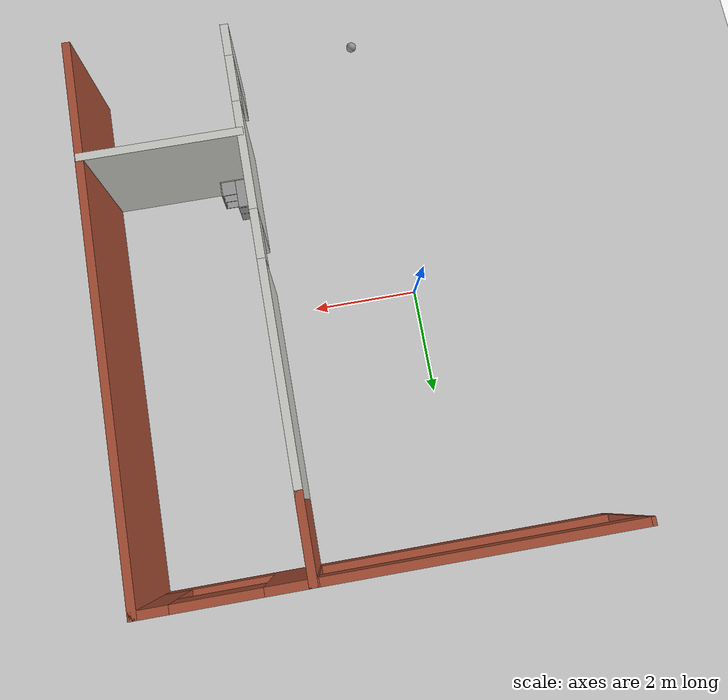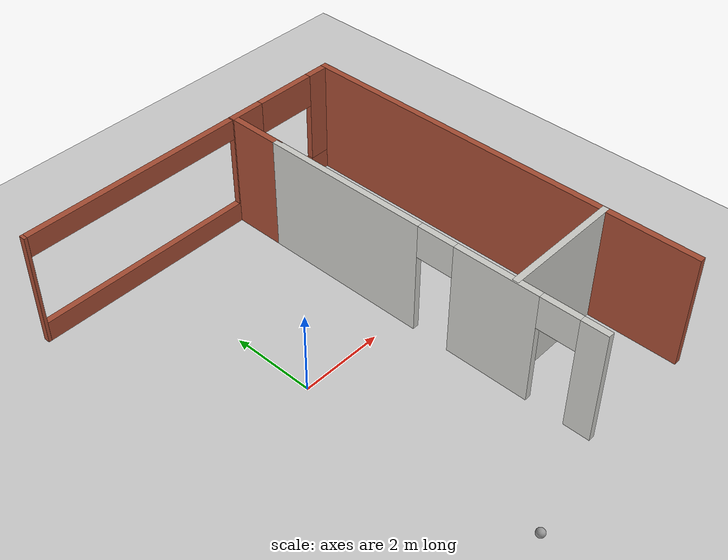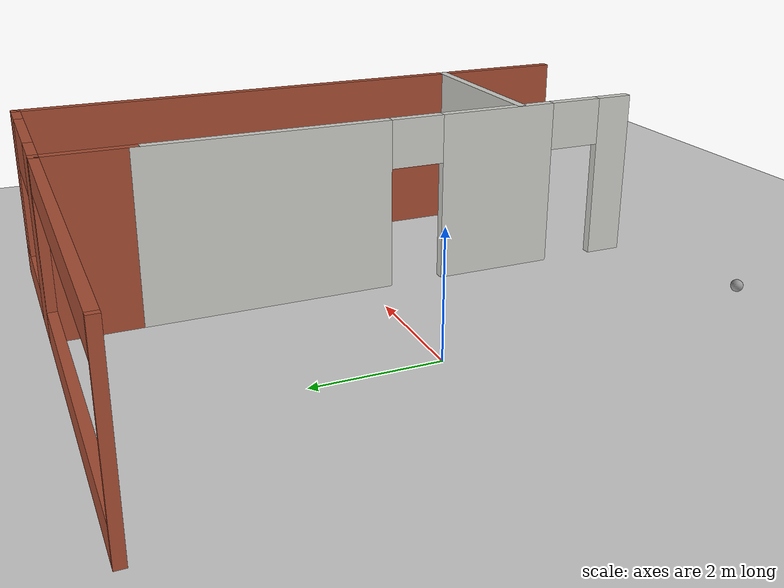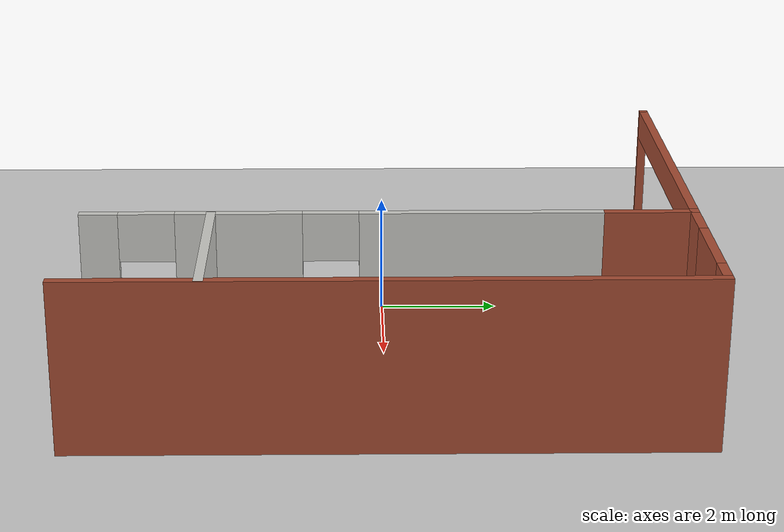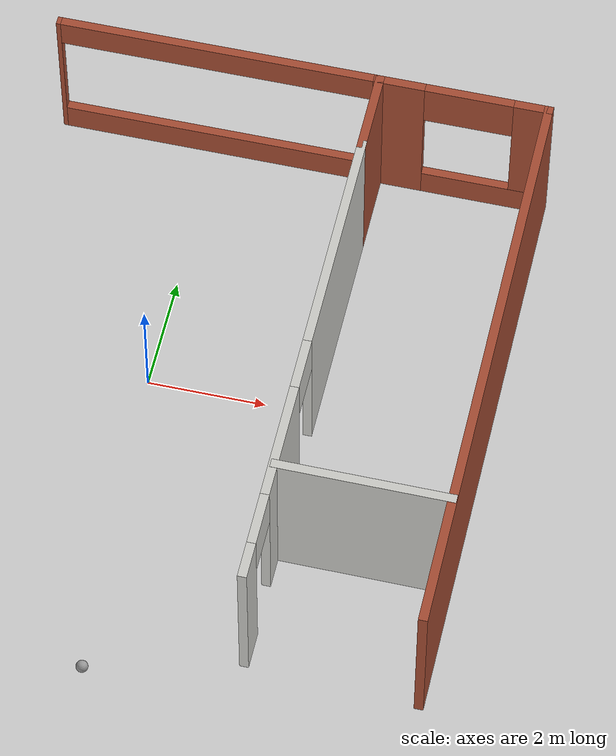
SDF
<sdf version="1.6">
 <world name="default">
  <model name="ground_plane">
   <static>1</static>
   <link name="link">
    <collision name="collision">
     <geometry><plane><normal>0 0 1</normal><size>100 100</size></plane></geometry>
     <surface>
      <contact><collide_bitmask>65535</collide_bitmask></contact>
      <friction><ode><mu>100</mu><mu2>50</mu2></ode></friction>
     </surface>
    </collision>
    <visual name="visual">
     <cast_shadows>0</cast_shadows>
     <geometry><plane><normal>0 0 1</normal><size>100 100</size></plane></geometry>
     <material>
      <script><uri>file://media/materials/scripts/gazebo.material</uri><name>Gazebo/Grey</name></script>
     </material>
    </visual>
   </link>
  </model>
  <model name="my_ball">
   <link name="link_0">
    <inertial>
     <mass>1</mass>
     <inertia><ixx>0.1</ixx><ixy>0</ixy><ixz>0</ixz><iyy>0.1</iyy><iyz>0</iyz><izz>0.1</izz></inertia>
    </inertial>
    <visual name="visual">
     <geometry><sphere><radius>0.1</radius></sphere></geometry>
     <material>
      <lighting>1</lighting>
      <script><uri>file://media/materials/scripts/gazebo.material</uri><name>Gazebo/Grey</name></script>
      <shader type="pixel"><normal_map>__default__</normal_map></shader>
      <ambient>1 1 1 1</ambient>
      <diffuse>1 1 1 1</diffuse>
      <specular>1 1 1 1</specular>
      <emissive>1 1 1 1</emissive>
     </material>
    </visual>
    <collision name="collision">
     <geometry><sphere><radius>0.1</radius></sphere></geometry>
     <surface>
      <friction>
       <ode><mu>1</mu><mu2>1</mu2><fdir1>0 0 0</fdir1><slip1>0</slip1><slip2>0</slip2></ode>
       <torsional>
        <coefficient>1</coefficient>
        <patch_radius>0</patch_radius>
        <surface_radius>0</surface_radius>
        <use_patch_radius>1</use_patch_radius>
        <ode><slip>0</slip></ode>
       </torsional>
      </friction>
      <bounce><restitution_coefficient>0</restitution_coefficient><threshold>1e+06</threshold></bounce>
      <contact>
       <collide_without_contact>0</collide_without_contact>
       <collide_without_contact_bitmask>1</collide_without_contact_bitmask>
       <collide_bitmask>1</collide_bitmask>
       <ode>
        <soft_cfm>0</soft_cfm>
        <soft_erp>0.2</soft_erp>
        <kp>1e+13</kp>
        <kd>1</kd>
        <max_vel>0.01</max_vel>
        <min_depth>0</min_depth>
       </ode>
       <bullet>
        <split_impulse>1</split_impulse>
        <split_impulse_penetration_threshold>-0.01</split_impulse_penetration_threshold>
        <soft_cfm>0</soft_cfm>
        <soft_erp>0.2</soft_erp>
        <kp>1e+13</kp>
        <kd>1</kd>
       </bullet>
      </contact>
     </surface>
    </collision>
   </link>
   <static>0</static>
   <pose>0.318591 -5.49363 0.1 0 -0 0</pose>
  </model>
  <model name="house">
   <link name="Wall_3">
    <pose>0.074445 4.925 0 0 -0 0</pose>
    <visual name="Wall_3_Visual_0">
     <pose>-2.76234 0 1.4 0 -0 0</pose>
     <geometry><box><size>0.07533 0.15 2.8</size></box></geometry>
     <material>
      <script><uri>file://media/materials/scripts/gazebo.material</uri><name>Gazebo/Bricks</name></script>
      <ambient>1 1 1 1</ambient>
      <shader type="pixel"/>
      <diffuse>1 1 1 1</diffuse>
      <specular>0.2 0.2 0.2 1</specular>
      <emissive>0 0 0 1</emissive>
     </material>
     <meta><layer>0</layer></meta>
    </visual>
    <visual name="Wall_3_Visual_2">
     <pose>2.71166 0 1.65 0 -0 0</pose>
     <geometry><box><size>0.17667 0.15 2.3</size></box></geometry>
     <material>
      <script><uri>file://media/materials/scripts/gazebo.material</uri><name>Gazebo/Bricks</name></script>
      <ambient>1 1 1 1</ambient>
      <shader type="pixel"/>
      <diffuse>1 1 1 1</diffuse>
      <specular>0.2 0.2 0.2 1</specular>
      <emissive>0 0 0 1</emissive>
     </material>
     <meta><layer>0</layer></meta>
    </visual>
    <visual name="Wall_3_Visual_1">
     <pose>0.037665 0 0.25 0 -0 0</pose>
     <geometry><box><size>5.52467 0.15 0.5</size></box></geometry>
     <material>
      <script><uri>file://media/materials/scripts/gazebo.material</uri><name>Gazebo/Bricks</name></script>
      <ambient>1 1 1 1</ambient>
      <shader type="pixel"/>
      <diffuse>1 1 1 1</diffuse>
      <specular>0.2 0.2 0.2 1</specular>
      <emissive>0 0 0 1</emissive>
     </material>
     <meta><layer>0</layer></meta>
    </visual>
    <visual name="Wall_3_Visual_3">
     <pose>-0.05067 0 2.55 0 -0 0</pose>
     <geometry><box><size>5.348 0.15 0.5</size></box></geometry>
     <material>
      <script><uri>file://media/materials/scripts/gazebo.material</uri><name>Gazebo/Bricks</name></script>
      <ambient>1 1 1 1</ambient>
      <shader type="pixel"/>
      <diffuse>1 1 1 1</diffuse>
      <specular>0.2 0.2 0.2 1</specular>
      <emissive>0 0 0 1</emissive>
     </material>
     <meta><layer>0</layer></meta>
    </visual>
    <collision name="Wall_3_Collision_0">
     <pose>-2.76234 0 1.4 0 -0 0</pose>
     <geometry><box><size>0.07533 0.15 2.8</size></box></geometry>
     <surface>
      <friction>
       <ode><mu>1</mu><mu2>1</mu2><fdir1>0 0 0</fdir1><slip1>0</slip1><slip2>0</slip2></ode>
       <torsional>
        <coefficient>1</coefficient>
        <patch_radius>0</patch_radius>
        <surface_radius>0</surface_radius>
        <use_patch_radius>1</use_patch_radius>
        <ode><slip>0</slip></ode>
       </torsional>
      </friction>
      <bounce><restitution_coefficient>0</restitution_coefficient><threshold>1e+06</threshold></bounce>
      <contact>
       <collide_without_contact>0</collide_without_contact>
       <collide_without_contact_bitmask>1</collide_without_contact_bitmask>
       <collide_bitmask>1</collide_bitmask>
       <ode>
        <soft_cfm>0</soft_cfm>
        <soft_erp>0.2</soft_erp>
        <kp>1e+13</kp>
        <kd>1</kd>
        <max_vel>0.01</max_vel>
        <min_depth>0</min_depth>
       </ode>
       <bullet>
        <split_impulse>1</split_impulse>
        <split_impulse_penetration_threshold>-0.01</split_impulse_penetration_threshold>
        <soft_cfm>0</soft_cfm>
        <soft_erp>0.2</soft_erp>
        <kp>1e+13</kp>
        <kd>1</kd>
       </bullet>
      </contact>
     </surface>
    </collision>
    <collision name="Wall_3_Collision_1">
     <pose>0.037665 0 0.25 0 -0 0</pose>
     <geometry><box><size>5.52467 0.15 0.5</size></box></geometry>
     <surface>
      <friction>
       <ode><mu>1</mu><mu2>1</mu2><fdir1>0 0 0</fdir1><slip1>0</slip1><slip2>0</slip2></ode>
       <torsional>
        <coefficient>1</coefficient>
        <patch_radius>0</patch_radius>
        <surface_radius>0</surface_radius>
        <use_patch_radius>1</use_patch_radius>
        <ode><slip>0</slip></ode>
       </torsional>
      </friction>
      <bounce><restitution_coefficient>0</restitution_coefficient><threshold>1e+06</threshold></bounce>
      <contact>
       <collide_without_contact>0</collide_without_contact>
       <collide_without_contact_bitmask>1</collide_without_contact_bitmask>
       <collide_bitmask>1</collide_bitmask>
       <ode>
        <soft_cfm>0</soft_cfm>
        <soft_erp>0.2</soft_erp>
        <kp>1e+13</kp>
        <kd>1</kd>
        <max_vel>0.01</max_vel>
        <min_depth>0</min_depth>
       </ode>
       <bullet>
        <split_impulse>1</split_impulse>
        <split_impulse_penetration_threshold>-0.01</split_impulse_penetration_threshold>
        <soft_cfm>0</soft_cfm>
        <soft_erp>0.2</soft_erp>
        <kp>1e+13</kp>
        <kd>1</kd>
       </bullet>
      </contact>
     </surface>
    </collision>
    <collision name="Wall_3_Collision_2">
     <pose>2.71166 0 1.65 0 -0 0</pose>
     <geometry><box><size>0.17667 0.15 2.3</size></box></geometry>
     <surface>
      <friction>
       <ode><mu>1</mu><mu2>1</mu2><fdir1>0 0 0</fdir1><slip1>0</slip1><slip2>0</slip2></ode>
       <torsional>
        <coefficient>1</coefficient>
        <patch_radius>0</patch_radius>
        <surface_radius>0</surface_radius>
        <use_patch_radius>1</use_patch_radius>
        <ode><slip>0</slip></ode>
       </torsional>
      </friction>
      <bounce><restitution_coefficient>0</restitution_coefficient><threshold>1e+06</threshold></bounce>
      <contact>
       <collide_without_contact>0</collide_without_contact>
       <collide_without_contact_bitmask>1</collide_without_contact_bitmask>
       <collide_bitmask>1</collide_bitmask>
       <ode>
        <soft_cfm>0</soft_cfm>
        <soft_erp>0.2</soft_erp>
        <kp>1e+13</kp>
        <kd>1</kd>
        <max_vel>0.01</max_vel>
        <min_depth>0</min_depth>
       </ode>
       <bullet>
        <split_impulse>1</split_impulse>
        <split_impulse_penetration_threshold>-0.01</split_impulse_penetration_threshold>
        <soft_cfm>0</soft_cfm>
        <soft_erp>0.2</soft_erp>
        <kp>1e+13</kp>
        <kd>1</kd>
       </bullet>
      </contact>
     </surface>
    </collision>
    <collision name="Wall_3_Collision_3">
     <pose>-0.05067 0 2.55 0 -0 0</pose>
     <geometry><box><size>5.348 0.15 0.5</size></box></geometry>
     <surface>
      <friction>
       <ode><mu>1</mu><mu2>1</mu2><fdir1>0 0 0</fdir1><slip1>0</slip1><slip2>0</slip2></ode>
       <torsional>
        <coefficient>1</coefficient>
        <patch_radius>0</patch_radius>
        <surface_radius>0</surface_radius>
        <use_patch_radius>1</use_patch_radius>
        <ode><slip>0</slip></ode>
       </torsional>
      </friction>
      <bounce><restitution_coefficient>0</restitution_coefficient><threshold>1e+06</threshold></bounce>
      <contact>
       <collide_without_contact>0</collide_without_contact>
       <collide_without_contact_bitmask>1</collide_without_contact_bitmask>
       <collide_bitmask>1</collide_bitmask>
       <ode>
        <soft_cfm>0</soft_cfm>
        <soft_erp>0.2</soft_erp>
        <kp>1e+13</kp>
        <kd>1</kd>
        <max_vel>0.01</max_vel>
        <min_depth>0</min_depth>
       </ode>
       <bullet>
        <split_impulse>1</split_impulse>
        <split_impulse_penetration_threshold>-0.01</split_impulse_penetration_threshold>
        <soft_cfm>0</soft_cfm>
        <soft_erp>0.2</soft_erp>
        <kp>1e+13</kp>
        <kd>1</kd>
       </bullet>
      </contact>
     </surface>
    </collision>
   </link>
   <link name="Wall_36">
    <pose>2.79944 4.2395 0 0 0 -1.5708</pose>
    <visual name="Wall_36_Visual">
     <pose>0 0 1.4 0 -0 0</pose>
     <geometry><box><size>1.521 0.15 2.8</size></box></geometry>
     <material>
      <script><uri>file://media/materials/scripts/gazebo.material</uri><name>Gazebo/Bricks</name></script>
      <ambient>1 1 1 1</ambient>
      <shader type="pixel"/>
      <diffuse>1 1 1 1</diffuse>
      <specular>0.2 0.2 0.2 1</specular>
      <emissive>0 0 0 1</emissive>
     </material>
     <meta><layer>0</layer></meta>
    </visual>
    <collision name="Wall_36_Collision">
     <pose>0 0 1.4 0 -0 0</pose>
     <geometry><box><size>1.521 0.15 2.8</size></box></geometry>
     <surface>
      <friction>
       <ode><mu>1</mu><mu2>1</mu2><fdir1>0 0 0</fdir1><slip1>0</slip1><slip2>0</slip2></ode>
       <torsional>
        <coefficient>1</coefficient>
        <patch_radius>0</patch_radius>
        <surface_radius>0</surface_radius>
        <use_patch_radius>1</use_patch_radius>
        <ode><slip>0</slip></ode>
       </torsional>
      </friction>
      <bounce><restitution_coefficient>0</restitution_coefficient><threshold>1e+06</threshold></bounce>
      <contact>
       <collide_without_contact>0</collide_without_contact>
       <collide_without_contact_bitmask>1</collide_without_contact_bitmask>
       <collide_bitmask>1</collide_bitmask>
       <ode>
        <soft_cfm>0</soft_cfm>
        <soft_erp>0.2</soft_erp>
        <kp>1e+13</kp>
        <kd>1</kd>
        <max_vel>0.01</max_vel>
        <min_depth>0</min_depth>
       </ode>
       <bullet>
        <split_impulse>1</split_impulse>
        <split_impulse_penetration_threshold>-0.01</split_impulse_penetration_threshold>
        <soft_cfm>0</soft_cfm>
        <soft_erp>0.2</soft_erp>
        <kp>1e+13</kp>
        <kd>1</kd>
       </bullet>
      </contact>
     </surface>
    </collision>
   </link>
   <link name="Wall_4">
    <pose>4.22444 4.925 0 0 -0 0</pose>
    <visual name="Wall_4_Visual_0">
     <pose>-1.07575 0 1.4 0 -0 0</pose>
     <geometry><box><size>0.848504 0.15 2.8</size></box></geometry>
     <material>
      <script><uri>file://media/materials/scripts/gazebo.material</uri><name>Gazebo/Bricks</name></script>
      <ambient>1 1 1 1</ambient>
      <shader type="pixel"/>
      <diffuse>1 1 1 1</diffuse>
      <specular>0.2 0.2 0.2 1</specular>
      <emissive>0 0 0 1</emissive>
     </material>
     <meta><layer>0</layer></meta>
    </visual>
    <visual name="Wall_4_Visual_1">
     <pose>0.424252 0 0.25 0 -0 0</pose>
     <geometry><box><size>2.1515 0.15 0.5</size></box></geometry>
     <material>
      <script><uri>file://media/materials/scripts/gazebo.material</uri><name>Gazebo/Bricks</name></script>
      <ambient>1 1 1 1</ambient>
      <shader type="pixel"/>
      <diffuse>1 1 1 1</diffuse>
      <specular>0.2 0.2 0.2 1</specular>
      <emissive>0 0 0 1</emissive>
     </material>
     <meta><layer>0</layer></meta>
    </visual>
    <visual name="Wall_4_Visual_2">
     <pose>1.17425 0 1.65 0 -0 0</pose>
     <geometry><box><size>0.651496 0.15 2.3</size></box></geometry>
     <material>
      <script><uri>file://media/materials/scripts/gazebo.material</uri><name>Gazebo/Bricks</name></script>
      <ambient>1 1 1 1</ambient>
      <shader type="pixel"/>
      <diffuse>1 1 1 1</diffuse>
      <specular>0.2 0.2 0.2 1</specular>
      <emissive>0 0 0 1</emissive>
     </material>
     <meta><layer>0</layer></meta>
    </visual>
    <visual name="Wall_4_Visual_3">
     <pose>0.098504 0 2.4 0 -0 0</pose>
     <geometry><box><size>1.5 0.15 0.8</size></box></geometry>
     <material>
      <script><uri>file://media/materials/scripts/gazebo.material</uri><name>Gazebo/Bricks</name></script>
      <ambient>1 1 1 1</ambient>
      <shader type="pixel"/>
      <diffuse>1 1 1 1</diffuse>
      <specular>0.2 0.2 0.2 1</specular>
      <emissive>0 0 0 1</emissive>
     </material>
     <meta><layer>0</layer></meta>
    </visual>
    <collision name="Wall_4_Collision_0">
     <pose>-1.07575 0 1.4 0 -0 0</pose>
     <geometry><box><size>0.848504 0.15 2.8</size></box></geometry>
     <surface>
      <friction>
       <ode><mu>1</mu><mu2>1</mu2><fdir1>0 0 0</fdir1><slip1>0</slip1><slip2>0</slip2></ode>
       <torsional>
        <coefficient>1</coefficient>
        <patch_radius>0</patch_radius>
        <surface_radius>0</surface_radius>
        <use_patch_radius>1</use_patch_radius>
        <ode><slip>0</slip></ode>
       </torsional>
      </friction>
      <bounce><restitution_coefficient>0</restitution_coefficient><threshold>1e+06</threshold></bounce>
      <contact>
       <collide_without_contact>0</collide_without_contact>
       <collide_without_contact_bitmask>1</collide_without_contact_bitmask>
       <collide_bitmask>1</collide_bitmask>
       <ode>
        <soft_cfm>0</soft_cfm>
        <soft_erp>0.2</soft_erp>
        <kp>1e+13</kp>
        <kd>1</kd>
        <max_vel>0.01</max_vel>
        <min_depth>0</min_depth>
       </ode>
       <bullet>
        <split_impulse>1</split_impulse>
        <split_impulse_penetration_threshold>-0.01</split_impulse_penetration_threshold>
        <soft_cfm>0</soft_cfm>
        <soft_erp>0.2</soft_erp>
        <kp>1e+13</kp>
        <kd>1</kd>
       </bullet>
      </contact>
     </surface>
    </collision>
    <collision name="Wall_4_Collision_1">
     <pose>0.424252 0 0.25 0 -0 0</pose>
     <geometry><box><size>2.1515 0.15 0.5</size></box></geometry>
     <surface>
      <friction>
       <ode><mu>1</mu><mu2>1</mu2><fdir1>0 0 0</fdir1><slip1>0</slip1><slip2>0</slip2></ode>
       <torsional>
        <coefficient>1</coefficient>
        <patch_radius>0</patch_radius>
        <surface_radius>0</surface_radius>
        <use_patch_radius>1</use_patch_radius>
        <ode><slip>0</slip></ode>
       </torsional>
      </friction>
      <bounce><restitution_coefficient>0</restitution_coefficient><threshold>1e+06</threshold></bounce>
      <contact>
       <collide_without_contact>0</collide_without_contact>
       <collide_without_contact_bitmask>1</collide_without_contact_bitmask>
       <collide_bitmask>1</collide_bitmask>
       <ode>
        <soft_cfm>0</soft_cfm>
        <soft_erp>0.2</soft_erp>
        <kp>1e+13</kp>
        <kd>1</kd>
        <max_vel>0.01</max_vel>
        <min_depth>0</min_depth>
       </ode>
       <bullet>
        <split_impulse>1</split_impulse>
        <split_impulse_penetration_threshold>-0.01</split_impulse_penetration_threshold>
        <soft_cfm>0</soft_cfm>
        <soft_erp>0.2</soft_erp>
        <kp>1e+13</kp>
        <kd>1</kd>
       </bullet>
      </contact>
     </surface>
    </collision>
    <collision name="Wall_4_Collision_2">
     <pose>1.17425 0 1.65 0 -0 0</pose>
     <geometry><box><size>0.651496 0.15 2.3</size></box></geometry>
     <surface>
      <friction>
       <ode><mu>1</mu><mu2>1</mu2><fdir1>0 0 0</fdir1><slip1>0</slip1><slip2>0</slip2></ode>
       <torsional>
        <coefficient>1</coefficient>
        <patch_radius>0</patch_radius>
        <surface_radius>0</surface_radius>
        <use_patch_radius>1</use_patch_radius>
        <ode><slip>0</slip></ode>
       </torsional>
      </friction>
      <bounce><restitution_coefficient>0</restitution_coefficient><threshold>1e+06</threshold></bounce>
      <contact>
       <collide_without_contact>0</collide_without_contact>
       <collide_without_contact_bitmask>1</collide_without_contact_bitmask>
       <collide_bitmask>1</collide_bitmask>
       <ode>
        <soft_cfm>0</soft_cfm>
        <soft_erp>0.2</soft_erp>
        <kp>1e+13</kp>
        <kd>1</kd>
        <max_vel>0.01</max_vel>
        <min_depth>0</min_depth>
       </ode>
       <bullet>
        <split_impulse>1</split_impulse>
        <split_impulse_penetration_threshold>-0.01</split_impulse_penetration_threshold>
        <soft_cfm>0</soft_cfm>
        <soft_erp>0.2</soft_erp>
        <kp>1e+13</kp>
        <kd>1</kd>
       </bullet>
      </contact>
     </surface>
    </collision>
    <collision name="Wall_4_Collision_3">
     <pose>0.098504 0 2.4 0 -0 0</pose>
     <geometry><box><size>1.5 0.15 0.8</size></box></geometry>
     <surface>
      <friction>
       <ode><mu>1</mu><mu2>1</mu2><fdir1>0 0 0</fdir1><slip1>0</slip1><slip2>0</slip2></ode>
       <torsional>
        <coefficient>1</coefficient>
        <patch_radius>0</patch_radius>
        <surface_radius>0</surface_radius>
        <use_patch_radius>1</use_patch_radius>
        <ode><slip>0</slip></ode>
       </torsional>
      </friction>
      <bounce><restitution_coefficient>0</restitution_coefficient><threshold>1e+06</threshold></bounce>
      <contact>
       <collide_without_contact>0</collide_without_contact>
       <collide_without_contact_bitmask>1</collide_without_contact_bitmask>
       <collide_bitmask>1</collide_bitmask>
       <ode>
        <soft_cfm>0</soft_cfm>
        <soft_erp>0.2</soft_erp>
        <kp>1e+13</kp>
        <kd>1</kd>
        <max_vel>0.01</max_vel>
        <min_depth>0</min_depth>
       </ode>
       <bullet>
        <split_impulse>1</split_impulse>
        <split_impulse_penetration_threshold>-0.01</split_impulse_penetration_threshold>
        <soft_cfm>0</soft_cfm>
        <soft_erp>0.2</soft_erp>
        <kp>1e+13</kp>
        <kd>1</kd>
       </bullet>
      </contact>
     </surface>
    </collision>
   </link>
   <link name="Wall_41">
    <pose>2.79944 -0.621 0 0 -0 1.5708</pose>
    <inertial>
     <mass>1</mass>
     <inertia><ixx>1</ixx><ixy>0</ixy><ixz>0</ixz><iyy>1</iyy><iyz>0</iyz><izz>1</izz></inertia>
    </inertial>
    <visual name="Wall_41_Visual_0">
     <pose>-3.9395 0 1.4 0 -0 0</pose>
     <geometry><box><size>0.621 0.15 2.8</size></box></geometry>
     <material>
      <script><uri>file://media/materials/scripts/gazebo.material</uri><name>Gazebo/CeilingTiled</name></script>
      <ambient>1 1 1 1</ambient>
      <shader type="pixel"><normal_map>__default__</normal_map></shader>
      <diffuse>1 1 1 1</diffuse>
      <specular>0 0 0 1</specular>
      <emissive>0 0 0 1</emissive>
     </material>
     <meta><layer>0</layer></meta>
    </visual>
    <visual name="Wall_41_Visual_1">
     <pose>-1.71426 0 1.4 0 -0 0</pose>
     <geometry><box><size>2.02948 0.15 2.8</size></box></geometry>
     <material>
      <script><uri>file://media/materials/scripts/gazebo.material</uri><name>Gazebo/CeilingTiled</name></script>
      <ambient>1 1 1 1</ambient>
      <shader type="pixel"><normal_map>__default__</normal_map></shader>
      <diffuse>1 1 1 1</diffuse>
      <specular>0 0 0 1</specular>
      <emissive>0 0 0 1</emissive>
     </material>
     <meta><layer>0</layer></meta>
    </visual>
    <visual name="Wall_41_Visual_2">
     <pose>2.22524 0 1.4 0 -0 0</pose>
     <geometry><box><size>4.04952 0.15 2.8</size></box></geometry>
     <material>
      <script><uri>file://media/materials/scripts/gazebo.material</uri><name>Gazebo/CeilingTiled</name></script>
      <ambient>1 1 1 1</ambient>
      <shader type="pixel"><normal_map>__default__</normal_map></shader>
      <diffuse>1 1 1 1</diffuse>
      <specular>0 0 0 1</specular>
      <emissive>0 0 0 1</emissive>
     </material>
     <meta><layer>0</layer></meta>
    </visual>
    <visual name="Wall_41_Visual_5">
     <pose>-3.179 0 2.4 0 -0 0</pose>
     <geometry><box><size>0.9 0.15 0.8</size></box></geometry>
     <material>
      <script><uri>file://media/materials/scripts/gazebo.material</uri><name>Gazebo/CeilingTiled</name></script>
      <ambient>1 1 1 1</ambient>
      <shader type="pixel"><normal_map>__default__</normal_map></shader>
      <diffuse>1 1 1 1</diffuse>
      <specular>0 0 0 1</specular>
      <emissive>0 0 0 1</emissive>
     </material>
     <meta><layer>0</layer></meta>
    </visual>
    <visual name="Wall_41_Visual_6">
     <pose>-0.249524 0 2.4 0 -0 0</pose>
     <geometry><box><size>0.9 0.15 0.8</size></box></geometry>
     <material>
      <script><uri>file://media/materials/scripts/gazebo.material</uri><name>Gazebo/CeilingTiled</name></script>
      <ambient>1 1 1 1</ambient>
      <shader type="pixel"><normal_map>__default__</normal_map></shader>
      <diffuse>1 1 1 1</diffuse>
      <specular>0 0 0 1</specular>
      <emissive>0 0 0 1</emissive>
     </material>
     <meta><layer>0</layer></meta>
    </visual>
    <collision name="Wall_41_Collision_5">
     <pose>-3.179 0 2.4 0 -0 0</pose>
     <geometry><box><size>0.9 0.15 0.8</size></box></geometry>
     <surface>
      <friction>
       <ode><mu>1</mu><mu2>1</mu2><fdir1>0 0 0</fdir1><slip1>0</slip1><slip2>0</slip2></ode>
       <torsional>
        <coefficient>1</coefficient>
        <patch_radius>0</patch_radius>
        <surface_radius>0</surface_radius>
        <use_patch_radius>1</use_patch_radius>
        <ode><slip>0</slip></ode>
       </torsional>
      </friction>
      <bounce><restitution_coefficient>0</restitution_coefficient><threshold>1e+06</threshold></bounce>
      <contact>
       <collide_without_contact>0</collide_without_contact>
       <collide_without_contact_bitmask>1</collide_without_contact_bitmask>
       <collide_bitmask>1</collide_bitmask>
       <ode>
        <soft_cfm>0</soft_cfm>
        <soft_erp>0.2</soft_erp>
        <kp>1e+13</kp>
        <kd>1</kd>
        <max_vel>0.01</max_vel>
        <min_depth>0</min_depth>
       </ode>
       <bullet>
        <split_impulse>1</split_impulse>
        <split_impulse_penetration_threshold>-0.01</split_impulse_penetration_threshold>
        <soft_cfm>0</soft_cfm>
        <soft_erp>0.2</soft_erp>
        <kp>1e+13</kp>
        <kd>1</kd>
       </bullet>
      </contact>
     </surface>
    </collision>
    <collision name="Wall_41_Collision_0">
     <pose>-3.9395 0 1.4 0 -0 0</pose>
     <geometry><box><size>0.621 0.15 2.8</size></box></geometry>
     <surface>
      <friction>
       <ode><mu>1</mu><mu2>1</mu2><fdir1>0 0 0</fdir1><slip1>0</slip1><slip2>0</slip2></ode>
       <torsional>
        <coefficient>1</coefficient>
        <patch_radius>0</patch_radius>
        <surface_radius>0</surface_radius>
        <use_patch_radius>1</use_patch_radius>
        <ode><slip>0</slip></ode>
       </torsional>
      </friction>
      <bounce><restitution_coefficient>0</restitution_coefficient><threshold>1e+06</threshold></bounce>
      <contact>
       <collide_without_contact>0</collide_without_contact>
       <collide_without_contact_bitmask>1</collide_without_contact_bitmask>
       <collide_bitmask>1</collide_bitmask>
       <ode>
        <soft_cfm>0</soft_cfm>
        <soft_erp>0.2</soft_erp>
        <kp>1e+13</kp>
        <kd>1</kd>
        <max_vel>0.01</max_vel>
        <min_depth>0</min_depth>
       </ode>
       <bullet>
        <split_impulse>1</split_impulse>
        <split_impulse_penetration_threshold>-0.01</split_impulse_penetration_threshold>
        <soft_cfm>0</soft_cfm>
        <soft_erp>0.2</soft_erp>
        <kp>1e+13</kp>
        <kd>1</kd>
       </bullet>
      </contact>
     </surface>
    </collision>
    <collision name="Wall_41_Collision_2">
     <pose>2.22524 0 1.4 0 -0 0</pose>
     <geometry><box><size>4.04952 0.15 2.8</size></box></geometry>
     <surface>
      <friction>
       <ode><mu>1</mu><mu2>1</mu2><fdir1>0 0 0</fdir1><slip1>0</slip1><slip2>0</slip2></ode>
       <torsional>
        <coefficient>1</coefficient>
        <patch_radius>0</patch_radius>
        <surface_radius>0</surface_radius>
        <use_patch_radius>1</use_patch_radius>
        <ode><slip>0</slip></ode>
       </torsional>
      </friction>
      <bounce><restitution_coefficient>0</restitution_coefficient><threshold>1e+06</threshold></bounce>
      <contact>
       <collide_without_contact>0</collide_without_contact>
       <collide_without_contact_bitmask>1</collide_without_contact_bitmask>
       <collide_bitmask>1</collide_bitmask>
       <ode>
        <soft_cfm>0</soft_cfm>
        <soft_erp>0.2</soft_erp>
        <kp>1e+13</kp>
        <kd>1</kd>
        <max_vel>0.01</max_vel>
        <min_depth>0</min_depth>
       </ode>
       <bullet>
        <split_impulse>1</split_impulse>
        <split_impulse_penetration_threshold>-0.01</split_impulse_penetration_threshold>
        <soft_cfm>0</soft_cfm>
        <soft_erp>0.2</soft_erp>
        <kp>1e+13</kp>
        <kd>1</kd>
       </bullet>
      </contact>
     </surface>
    </collision>
    <collision name="Wall_41_Collision_1">
     <pose>-1.71426 0 1.4 0 -0 0</pose>
     <geometry><box><size>2.02948 0.15 2.8</size></box></geometry>
     <surface>
      <friction>
       <ode><mu>1</mu><mu2>1</mu2><fdir1>0 0 0</fdir1><slip1>0</slip1><slip2>0</slip2></ode>
       <torsional>
        <coefficient>1</coefficient>
        <patch_radius>0</patch_radius>
        <surface_radius>0</surface_radius>
        <use_patch_radius>1</use_patch_radius>
        <ode><slip>0</slip></ode>
       </torsional>
      </friction>
      <bounce><restitution_coefficient>0</restitution_coefficient><threshold>1e+06</threshold></bounce>
      <contact>
       <collide_without_contact>0</collide_without_contact>
       <collide_without_contact_bitmask>1</collide_without_contact_bitmask>
       <collide_bitmask>1</collide_bitmask>
       <ode>
        <soft_cfm>0</soft_cfm>
        <soft_erp>0.2</soft_erp>
        <kp>1e+13</kp>
        <kd>1</kd>
        <max_vel>0.01</max_vel>
        <min_depth>0</min_depth>
       </ode>
       <bullet>
        <split_impulse>1</split_impulse>
        <split_impulse_penetration_threshold>-0.01</split_impulse_penetration_threshold>
        <soft_cfm>0</soft_cfm>
        <soft_erp>0.2</soft_erp>
        <kp>1e+13</kp>
        <kd>1</kd>
       </bullet>
      </contact>
     </surface>
    </collision>
    <collision name="Wall_41_Collision_6">
     <pose>-0.249524 0 2.4 0 -0 0</pose>
     <geometry><box><size>0.9 0.15 0.8</size></box></geometry>
     <surface>
      <friction>
       <ode><mu>1</mu><mu2>1</mu2><fdir1>0 0 0</fdir1><slip1>0</slip1><slip2>0</slip2></ode>
       <torsional>
        <coefficient>1</coefficient>
        <patch_radius>0</patch_radius>
        <surface_radius>0</surface_radius>
        <use_patch_radius>1</use_patch_radius>
        <ode><slip>0</slip></ode>
       </torsional>
      </friction>
      <bounce><restitution_coefficient>0</restitution_coefficient><threshold>1e+06</threshold></bounce>
      <contact>
       <collide_without_contact>0</collide_without_contact>
       <collide_without_contact_bitmask>1</collide_without_contact_bitmask>
       <collide_bitmask>1</collide_bitmask>
       <ode>
        <soft_cfm>0</soft_cfm>
        <soft_erp>0.2</soft_erp>
        <kp>1e+13</kp>
        <kd>1</kd>
        <max_vel>0.01</max_vel>
        <min_depth>0</min_depth>
       </ode>
       <bullet>
        <split_impulse>1</split_impulse>
        <split_impulse_penetration_threshold>-0.01</split_impulse_penetration_threshold>
        <soft_cfm>0</soft_cfm>
        <soft_erp>0.2</soft_erp>
        <kp>1e+13</kp>
        <kd>1</kd>
       </bullet>
      </contact>
     </surface>
    </collision>
   </link>
   <link name="Wall_49">
    <pose>4.23556 -2.77325 0 0 -0 3.14159</pose>
    <inertial>
     <mass>1</mass>
     <inertia><ixx>1</ixx><ixy>0</ixy><ixz>0</ixz><iyy>1</iyy><iyz>0</iyz><izz>1</izz></inertia>
    </inertial>
    <visual name="Wall_49_Visual">
     <pose>0 0 1.401 0 -0 0</pose>
     <geometry><box><size>2.96 0.15 2.8</size></box></geometry>
     <material>
      <script><uri>file://media/materials/scripts/gazebo.material</uri><name>Gazebo/CeilingTiled</name></script>
      <ambient>1 1 1 1</ambient>
      <shader type="pixel"><normal_map>__default__</normal_map></shader>
      <diffuse>1 1 1 1</diffuse>
      <specular>0 0 0 1</specular>
      <emissive>0 0 0 1</emissive>
     </material>
     <meta><layer>0</layer></meta>
    </visual>
    <collision name="Wall_49_Collision">
     <pose>0 0 1.401 0 -0 0</pose>
     <geometry><box><size>2.96 0.15 2.8</size></box></geometry>
     <surface>
      <friction>
       <ode><mu>1</mu><mu2>1</mu2><fdir1>0 0 0</fdir1><slip1>0</slip1><slip2>0</slip2></ode>
       <torsional>
        <coefficient>1</coefficient>
        <patch_radius>0</patch_radius>
        <surface_radius>0</surface_radius>
        <use_patch_radius>1</use_patch_radius>
        <ode><slip>0</slip></ode>
       </torsional>
      </friction>
      <bounce><restitution_coefficient>0</restitution_coefficient><threshold>1e+06</threshold></bounce>
      <contact>
       <collide_without_contact>0</collide_without_contact>
       <collide_without_contact_bitmask>1</collide_without_contact_bitmask>
       <collide_bitmask>1</collide_bitmask>
       <ode>
        <soft_cfm>0</soft_cfm>
        <soft_erp>0.2</soft_erp>
        <kp>1e+13</kp>
        <kd>1</kd>
        <max_vel>0.01</max_vel>
        <min_depth>0</min_depth>
       </ode>
       <bullet>
        <split_impulse>1</split_impulse>
        <split_impulse_penetration_threshold>-0.01</split_impulse_penetration_threshold>
        <soft_cfm>0</soft_cfm>
        <soft_erp>0.2</soft_erp>
        <kp>1e+13</kp>
        <kd>1</kd>
       </bullet>
      </contact>
     </surface>
    </collision>
   </link>
   <link name="Wall_5">
    <pose>5.64944 0 0 0 0 -1.5708</pose>
    <visual name="Wall_5_Visual">
     <pose>0 0 1.4 0 -0 0</pose>
     <geometry><box><size>10 0.15 2.8</size></box></geometry>
     <material>
      <script><uri>file://media/materials/scripts/gazebo.material</uri><name>Gazebo/Bricks</name></script>
      <ambient>1 1 1 1</ambient>
      <shader type="pixel"/>
      <diffuse>1 1 1 1</diffuse>
      <specular>0.2 0.2 0.2 1</specular>
      <emissive>0 0 0 1</emissive>
     </material>
     <meta><layer>0</layer></meta>
    </visual>
    <collision name="Wall_5_Collision">
     <pose>0 0 1.4 0 -0 0</pose>
     <geometry><box><size>10 0.15 2.8</size></box></geometry>
     <surface>
      <friction>
       <ode><mu>1</mu><mu2>1</mu2><fdir1>0 0 0</fdir1><slip1>0</slip1><slip2>0</slip2></ode>
       <torsional>
        <coefficient>1</coefficient>
        <patch_radius>0</patch_radius>
        <surface_radius>0</surface_radius>
        <use_patch_radius>1</use_patch_radius>
        <ode><slip>0</slip></ode>
       </torsional>
      </friction>
      <bounce><restitution_coefficient>0</restitution_coefficient><threshold>1e+06</threshold></bounce>
      <contact>
       <collide_without_contact>0</collide_without_contact>
       <collide_without_contact_bitmask>1</collide_without_contact_bitmask>
       <collide_bitmask>1</collide_bitmask>
       <ode>
        <soft_cfm>0</soft_cfm>
        <soft_erp>0.2</soft_erp>
        <kp>1e+13</kp>
        <kd>1</kd>
        <max_vel>0.01</max_vel>
        <min_depth>0</min_depth>
       </ode>
       <bullet>
        <split_impulse>1</split_impulse>
        <split_impulse_penetration_threshold>-0.01</split_impulse_penetration_threshold>
        <soft_cfm>0</soft_cfm>
        <soft_erp>0.2</soft_erp>
        <kp>1e+13</kp>
        <kd>1</kd>
       </bullet>
      </contact>
     </surface>
    </collision>
   </link>
   <static>1</static>
  </model>
  <model name="Wall_Cabinet_Coin_24x30W">
   <link name="Wall_10">
    <pose>0.286 -0.148 0.384 0 -0 0</pose>
    <inertial>
     <mass>2.1259</mass>
     <inertia><ixx>0.0158</ixx><iyy>0.1202</iyy><izz>0.1046</izz><ixy>0</ixy><ixz>0</ixz><iyz>0</iyz></inertia>
    </inertial>
    <collision name="Wall_10_Collision"><geometry><box><size>0.02 0.296 0.768</size></box></geometry></collision>
    <visual name="Wall_10_Visual">
     <geometry><box><size>0.02 0.296 0.768</size></box></geometry>
     <material>
      <script><uri>file://media/materials/scripts/gazebo.material</uri><name>Gazebo/Grey</name></script>
      <ambient>1 1 1 1</ambient>
     </material>
    </visual>
   </link>
   <joint name="10_16" type="fixed">
    <pose>0 0 -0.374 0 -0 0</pose>
    <parent>Wall_16</parent>
    <child>Wall_10</child>
    <axis>
     <xyz>1 0 0</xyz>
     <use_parent_model_frame>0</use_parent_model_frame>
     <limit><lower>-1e+16</lower><upper>1e+16</upper></limit>
    </axis>
   </joint>
   <joint name="10_14" type="fixed">
    <parent>Wall_14</parent>
    <child>Wall_10</child>
    <axis>
     <xyz>1 0 0</xyz>
     <use_parent_model_frame>0</use_parent_model_frame>
     <limit><lower>-1e+16</lower><upper>1e+16</upper></limit>
    </axis>
   </joint>
   <joint name="10_12" type="fixed">
    <pose>0 0 0.374 0 -0 0</pose>
    <parent>Wall_12</parent>
    <child>Wall_10</child>
    <axis>
     <xyz>1 0 0</xyz>
     <use_parent_model_frame>0</use_parent_model_frame>
     <limit><lower>-1e+16</lower><upper>1e+16</upper></limit>
    </axis>
   </joint>
   <joint name="10_29" type="fixed">
    <pose>0 -0.148 0 0 -0 0</pose>
    <parent>Wall_29</parent>
    <child>Wall_10</child>
    <axis>
     <xyz>1 0 0</xyz>
     <use_parent_model_frame>0</use_parent_model_frame>
     <limit><lower>-1e+16</lower><upper>1e+16</upper></limit>
    </axis>
   </joint>
   <link name="Wall_12">
    <pose>0.148 -0.148 0.758 0 -0 0</pose>
    <inertial>
     <mass>0.8802</mass>
     <inertia><ixx>0.0065</ixx><iyy>0.0139</iyy><izz>0.0074</izz><ixy>0</ixy><ixz>0</ixz><iyz>0</iyz></inertia>
    </inertial>
    <collision name="Wall_12_Collision"><geometry><box><size>0.296 0.296 0.02</size></box></geometry></collision>
    <visual name="Wall_12_Visual">
     <geometry><box><size>0.296 0.296 0.02</size></box></geometry>
     <material>
      <script><uri>file://media/materials/scripts/gazebo.material</uri><name>Gazebo/Grey</name></script>
      <ambient>1 1 1 1</ambient>
     </material>
    </visual>
   </link>
   <joint name="12_29" type="fixed">
    <pose>0 -0.148 0 0 -0 0</pose>
    <parent>Wall_29</parent>
    <child>Wall_12</child>
    <axis>
     <xyz>0 0 1</xyz>
     <use_parent_model_frame>0</use_parent_model_frame>
     <limit><lower>-1e+16</lower><upper>1e+16</upper></limit>
    </axis>
   </joint>
   <link name="Wall_14">
    <pose>0.148 -0.148 0.384 0 -0 0</pose>
    <inertial>
     <mass>0.8802</mass>
     <inertia><ixx>0.0065</ixx><iyy>0.0139</iyy><izz>0.0074</izz><ixy>0</ixy><ixz>0</ixz><iyz>0</iyz></inertia>
    </inertial>
    <collision name="Wall_14_Collision"><geometry><box><size>0.296 0.296 0.02</size></box></geometry></collision>
    <visual name="Wall_14_Visual">
     <geometry><box><size>0.296 0.296 0.02</size></box></geometry>
     <material>
      <script><uri>file://media/materials/scripts/gazebo.material</uri><name>Gazebo/Grey</name></script>
      <ambient>1 1 1 1</ambient>
     </material>
    </visual>
   </link>
   <joint name="14_29" type="fixed">
    <pose>0 -0.148 0 0 -0 0</pose>
    <parent>Wall_29</parent>
    <child>Wall_14</child>
    <axis>
     <xyz>0 1 0</xyz>
     <use_parent_model_frame>0</use_parent_model_frame>
     <limit><lower>-1e+16</lower><upper>1e+16</upper></limit>
    </axis>
   </joint>
   <link name="Wall_16">
    <pose>0.148 -0.148 0.01 0 -0 0</pose>
    <inertial>
     <mass>0.8802</mass>
     <inertia><ixx>0.0065</ixx><iyy>0.0139</iyy><izz>0.0074</izz><ixy>0</ixy><ixz>0</ixz><iyz>0</iyz></inertia>
    </inertial>
    <collision name="Wall_16_Collision"><geometry><box><size>0.296 0.296 0.02</size></box></geometry></collision>
    <visual name="Wall_16_Visual">
     <geometry><box><size>0.296 0.296 0.02</size></box></geometry>
     <material>
      <script><uri>file://media/materials/scripts/gazebo.material</uri><name>Gazebo/Grey</name></script>
      <ambient>1 1 1 1</ambient>
     </material>
    </visual>
   </link>
   <joint name="16_29" type="fixed">
    <pose>0 -0.148 0 0 -0 0</pose>
    <parent>Wall_29</parent>
    <child>Wall_16</child>
    <axis>
     <xyz>0 1 0</xyz>
     <use_parent_model_frame>0</use_parent_model_frame>
     <limit><lower>-1e+16</lower><upper>1e+16</upper></limit>
    </axis>
   </joint>
   <link name="Wall_18">
    <pose>-0.148 0 0.01 0 -0 0</pose>
    <inertial>
     <mass>1.6525</mass>
     <inertia><ixx>0.0491</ixx><iyy>0.0613</iyy><izz>0.0123</izz><ixy>0</ixy><ixz>0</ixz><iyz>0</iyz></inertia>
    </inertial>
    <collision name="Wall_18_Collision"><geometry><box><size>0.296 0.592 0.02</size></box></geometry></collision>
    <visual name="Wall_18_Visual">
     <geometry><box><size>0.296 0.592 0.02</size></box></geometry>
     <material>
      <script><uri>file://media/materials/scripts/gazebo.material</uri><name>Gazebo/Grey</name></script>
      <ambient>1 1 1 1</ambient>
     </material>
    </visual>
   </link>
   <joint name="18_16" type="fixed">
    <pose>0.148 -0.148 0 0 -0 0</pose>
    <parent>Wall_16</parent>
    <child>Wall_18</child>
    <axis>
     <xyz>1 0 0</xyz>
     <use_parent_model_frame>0</use_parent_model_frame>
     <limit><lower>-1e+16</lower><upper>1e+16</upper></limit>
    </axis>
   </joint>
   <joint name="18_29" type="fixed">
    <pose>0 -0.296 0 0 -0 0</pose>
    <parent>Wall_29</parent>
    <child>Wall_18</child>
    <axis>
     <xyz>0 1 0</xyz>
     <use_parent_model_frame>0</use_parent_model_frame>
     <limit><lower>-1e+16</lower><upper>1e+16</upper></limit>
    </axis>
   </joint>
   <joint name="18_27" type="fixed">
    <pose>-0.148 0 0 0 -0 0</pose>
    <parent>Wall_27</parent>
    <child>Wall_18</child>
    <axis>
     <xyz>1 0 0</xyz>
     <use_parent_model_frame>0</use_parent_model_frame>
     <limit><lower>-1e+16</lower><upper>1e+16</upper></limit>
    </axis>
   </joint>
   <joint name="18_30" type="fixed">
    <pose>0 0.296 0 0 -0 0</pose>
    <parent>Wall_30</parent>
    <child>Wall_18</child>
    <axis>
     <xyz>0 1 0</xyz>
     <use_parent_model_frame>0</use_parent_model_frame>
     <limit><lower>-1e+16</lower><upper>1e+16</upper></limit>
    </axis>
   </joint>
   <link name="Wall_20">
    <pose>-0.148 0 0.384 0 -0 0</pose>
    <inertial>
     <mass>1.6525</mass>
     <inertia><ixx>0.0491</ixx><iyy>0.0613</iyy><izz>0.0123</izz><ixy>0</ixy><ixz>0</ixz><iyz>0</iyz></inertia>
    </inertial>
    <collision name="Wall_20_Collision"><geometry><box><size>0.296 0.592 0.02</size></box></geometry></collision>
    <visual name="Wall_20_Visual">
     <geometry><box><size>0.296 0.592 0.02</size></box></geometry>
     <material>
      <script><uri>file://media/materials/scripts/gazebo.material</uri><name>Gazebo/Grey</name></script>
      <ambient>1 1 1 1</ambient>
     </material>
    </visual>
   </link>
   <joint name="20_14" type="fixed">
    <pose>0.148 -0.148 0 0 -0 0</pose>
    <parent>Wall_14</parent>
    <child>Wall_20</child>
    <axis>
     <xyz>1 0 0</xyz>
     <use_parent_model_frame>0</use_parent_model_frame>
     <limit><lower>-1e+16</lower><upper>1e+16</upper></limit>
    </axis>
   </joint>
   <joint name="20_29" type="fixed">
    <pose>0 -0.296 0 0 -0 0</pose>
    <parent>Wall_29</parent>
    <child>Wall_20</child>
    <axis>
     <xyz>0 1 0</xyz>
     <use_parent_model_frame>0</use_parent_model_frame>
     <limit><lower>-1e+16</lower><upper>1e+16</upper></limit>
    </axis>
   </joint>
   <joint name="20_27" type="fixed">
    <pose>-0.148 0 0 0 -0 0</pose>
    <parent>Wall_27</parent>
    <child>Wall_20</child>
    <axis>
     <xyz>1 0 0</xyz>
     <use_parent_model_frame>0</use_parent_model_frame>
     <limit><lower>-1e+16</lower><upper>1e+16</upper></limit>
    </axis>
   </joint>
   <joint name="20_30" type="fixed">
    <pose>0 0.296 0 0 -0 0</pose>
    <parent>Wall_30</parent>
    <child>Wall_20</child>
    <axis>
     <xyz>0 1 0</xyz>
     <use_parent_model_frame>0</use_parent_model_frame>
     <limit><lower>-1e+16</lower><upper>1e+16</upper></limit>
    </axis>
   </joint>
   <link name="Wall_22">
    <pose>-0.148 0 0.758 0 -0 0</pose>
    <inertial>
     <mass>1.6525</mass>
     <inertia><ixx>0.0491</ixx><iyy>0.0613</iyy><izz>0.0123</izz><ixy>0</ixy><ixz>0</ixz><iyz>0</iyz></inertia>
    </inertial>
    <collision name="Wall_22_Collision"><geometry><box><size>0.296 0.592 0.02</size></box></geometry></collision>
    <visual name="Wall_22_Visual">
     <geometry><box><size>0.296 0.592 0.02</size></box></geometry>
     <material>
      <script><uri>file://media/materials/scripts/gazebo.material</uri><name>Gazebo/Grey</name></script>
      <ambient>1 1 1 1</ambient>
     </material>
    </visual>
   </link>
   <joint name="22_12" type="fixed">
    <pose>0.148 -0.148 0 0 -0 0</pose>
    <parent>Wall_12</parent>
    <child>Wall_22</child>
    <axis>
     <xyz>1 0 0</xyz>
     <use_parent_model_frame>0</use_parent_model_frame>
     <limit><lower>-1e+16</lower><upper>1e+16</upper></limit>
    </axis>
   </joint>
   <joint name="22_29" type="fixed">
    <pose>0 -0.296 0 0 -0 0</pose>
    <parent>Wall_29</parent>
    <child>Wall_22</child>
    <axis>
     <xyz>0 1 0</xyz>
     <use_parent_model_frame>0</use_parent_model_frame>
     <limit><lower>-1e+16</lower><upper>1e+16</upper></limit>
    </axis>
   </joint>
   <joint name="22_27" type="fixed">
    <pose>-0.148 0 0 0 -0 0</pose>
    <parent>Wall_27</parent>
    <child>Wall_22</child>
    <axis>
     <xyz>1 0 0</xyz>
     <use_parent_model_frame>0</use_parent_model_frame>
     <limit><lower>-1e+16</lower><upper>1e+16</upper></limit>
    </axis>
   </joint>
   <joint name="22_30" type="fixed">
    <pose>0 0.296 0 0 -0 0</pose>
    <parent>Wall_30</parent>
    <child>Wall_22</child>
    <axis>
     <xyz>0 1 0</xyz>
     <use_parent_model_frame>0</use_parent_model_frame>
     <limit><lower>-1e+16</lower><upper>1e+16</upper></limit>
    </axis>
   </joint>
   <link name="Wall_27">
    <pose>-0.286 0 0.384 0 -0 0</pose>
    <inertial>
     <mass>4.2589</mass>
     <inertia><ixx>0.1266</ixx><iyy>0.3358</iyy><izz>0.2095</izz><ixy>0</ixy><ixz>0</ixz><iyz>0</iyz></inertia>
    </inertial>
    <collision name="Wall_27_Collision"><geometry><box><size>0.02 0.592 0.768</size></box></geometry></collision>
    <visual name="Wall_27_Visual">
     <geometry><box><size>0.02 0.592 0.768</size></box></geometry>
     <material>
      <script><uri>file://media/materials/scripts/gazebo.material</uri><name>Gazebo/Grey</name></script>
      <ambient>1 1 1 1</ambient>
     </material>
    </visual>
   </link>
   <joint name="27_30" type="fixed">
    <pose>0 0.296 0 0 -0 0</pose>
    <parent>Wall_30</parent>
    <child>Wall_27</child>
    <axis>
     <xyz>0 1 0</xyz>
     <use_parent_model_frame>0</use_parent_model_frame>
     <limit><lower>-1e+16</lower><upper>1e+16</upper></limit>
    </axis>
   </joint>
   <link name="Wall_29">
    <pose>0 -0.286 0.384 0 -0 0</pose>
    <inertial>
     <mass>4.3176</mass>
     <inertia><ixx>0.134</ixx><iyy>0.2091</iyy><izz>0.3428</izz><ixy>0</ixy><ixz>0</ixz><iyz>0</iyz></inertia>
    </inertial>
    <collision name="Wall_29_Collision"><geometry><box><size>0.592 0.02 0.768</size></box></geometry></collision>
    <visual name="Wall_29_Visual">
     <geometry><box><size>0.592 0.02 0.768</size></box></geometry>
     <material>
      <script><uri>file://media/materials/scripts/gazebo.material</uri><name>Gazebo/Grey</name></script>
      <ambient>1 1 1 1</ambient>
     </material>
    </visual>
   </link>
   <link name="Wall_30">
    <pose>-0.148 0.286 0.384 0 -0 0</pose>
    <inertial>
     <mass>2.1093</mass>
     <inertia><ixx>0.1021</ixx><iyy>0.0157</iyy><izz>0.1177</izz><ixy>0</ixy><ixz>0</ixz><iyz>0</iyz></inertia>
    </inertial>
    <collision name="Wall_30_Collision"><geometry><box><size>0.296 0.02 0.768</size></box></geometry></collision>
    <visual name="Wall_30_Visual">
     <geometry><box><size>0.296 0.02 0.768</size></box></geometry>
     <material>
      <script><uri>file://media/materials/scripts/gazebo.material</uri><name>Gazebo/Grey</name></script>
      <ambient>1 1 1 1</ambient>
     </material>
    </visual>
   </link>
   <static>1</static>
   <pose>3.16211 -2.39703 0 0 -0 0</pose>
  </model>
 </world>
</sdf>
